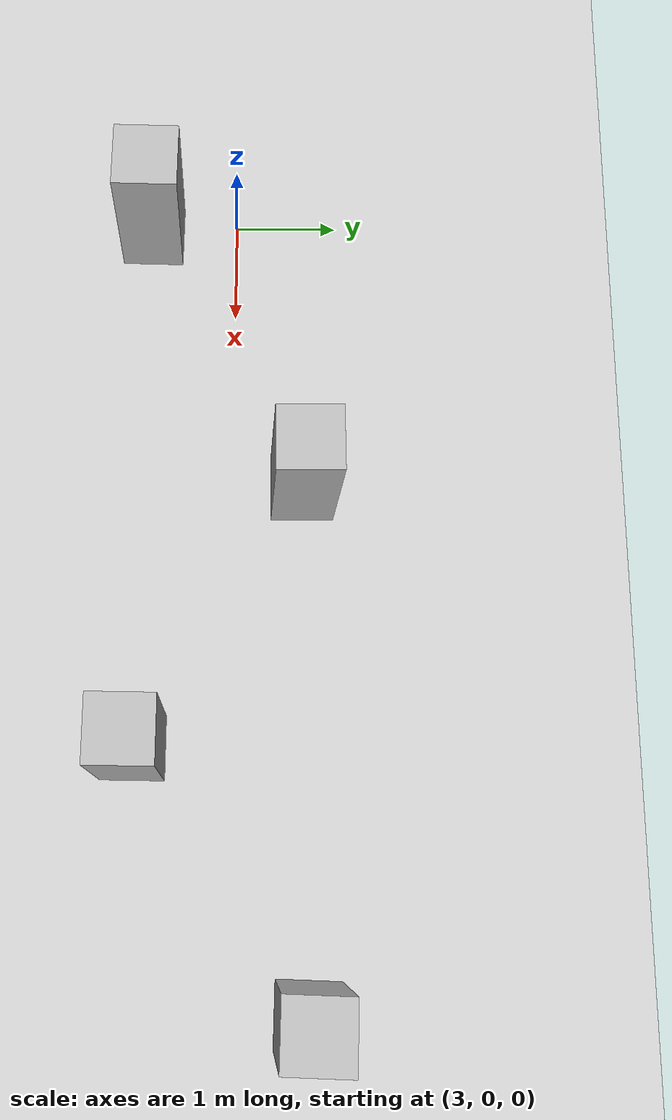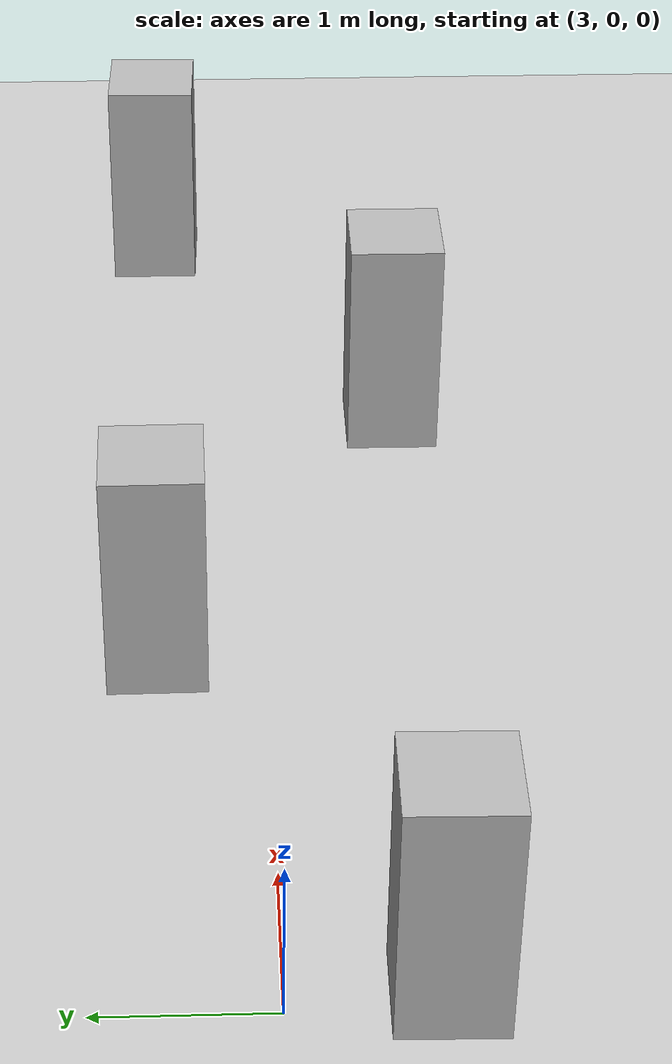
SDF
<?xml version="1.0"?>
<sdf version="1.6">
  <world name="v2-04g-r5-readiness-compile-support-static-s5115">
    <gravity>0 0 -9.81</gravity>
    <physics name="v2_deterministic" type="ode">
      <max_step_size>0.002</max_step_size>
      <real_time_update_rate>500</real_time_update_rate>
    </physics>
    <include>
      <uri>model://sun</uri>
    </include>
    <include>
      <uri>model://ground_plane</uri>
    </include>
    <model name="pillar-1">
      <static>true</static>
      <pose>3.107134790 -0.840431734 0.750000000 0 0 -0.015263234</pose>
      <link name="link">
        <collision name="collision">
          <geometry>
            <box>
              <size>0.600000 0.600000 1.500000</size>
            </box>
          </geometry>
        </collision>
        <visual name="visual">
          <geometry>
            <box>
              <size>0.600000 0.600000 1.500000</size>
            </box>
          </geometry>
        </visual>
      </link>
    </model>
    <model name="pillar-2">
      <static>true</static>
      <pose>5.814576569 0.664500053 0.750000000 0 0 0.011030139</pose>
      <link name="link">
        <collision name="collision">
          <geometry>
            <box>
              <size>0.600000 0.600000 1.500000</size>
            </box>
          </geometry>
        </collision>
        <visual name="visual">
          <geometry>
            <box>
              <size>0.600000 0.600000 1.500000</size>
            </box>
          </geometry>
        </visual>
      </link>
    </model>
    <model name="pillar-3">
      <static>true</static>
      <pose>8.338365121 -0.895297896 0.750000000 0 0 -0.004728396</pose>
      <link name="link">
        <collision name="collision">
          <geometry>
            <box>
              <size>0.600000 0.600000 1.500000</size>
            </box>
          </geometry>
        </collision>
        <visual name="visual">
          <geometry>
            <box>
              <size>0.600000 0.600000 1.500000</size>
            </box>
          </geometry>
        </visual>
      </link>
    </model>
    <model name="pillar-4">
      <static>true</static>
      <pose>10.672517526 0.720232068 0.750000000 0 0 -0.024974056</pose>
      <link name="link">
        <collision name="collision">
          <geometry>
            <box>
              <size>0.600000 0.600000 1.500000</size>
            </box>
          </geometry>
        </collision>
        <visual name="visual">
          <geometry>
            <box>
              <size>0.600000 0.600000 1.500000</size>
            </box>
          </geometry>
        </visual>
      </link>
    </model>
  </world>
</sdf>
